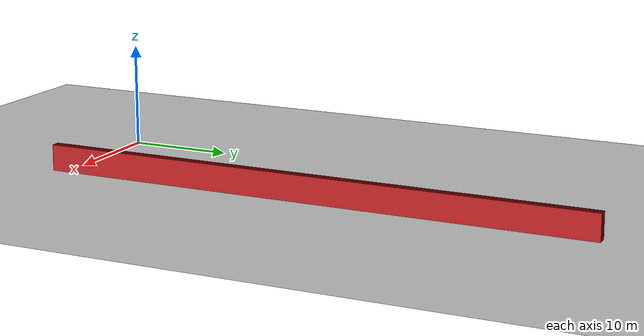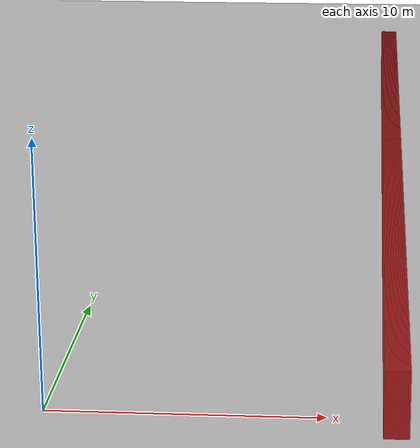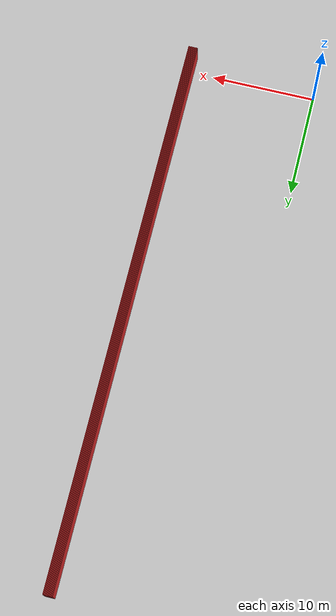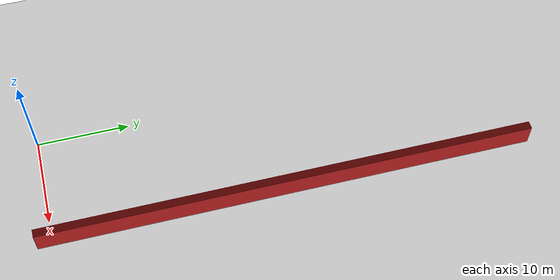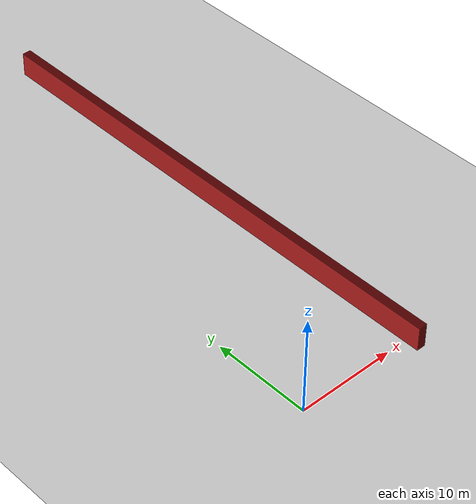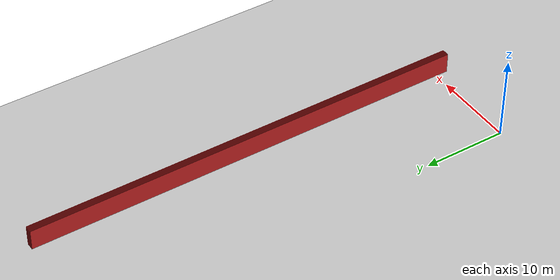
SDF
<sdf version="1.4">
 <world name="1_wall">
  <model name="ground_plane">
   <static>1</static>
   <link name="link">
    <collision name="collision">
     <geometry><plane><normal>0 0 1</normal><size>1000 1000</size></plane></geometry>
     <surface><friction><ode><mu>100</mu><mu2>50</mu2></ode></friction></surface>
    </collision>
    <visual name="visual">
     <cast_shadows>0</cast_shadows>
     <geometry><plane><normal>0 0 1</normal><size>10000 10000</size></plane></geometry>
     <material>
      <script><uri>file://media/materials/scripts/gazebo.material</uri><name>Gazebo/Grey</name></script>
     </material>
    </visual>
    <velocity_decay><linear>0</linear><angular>0</angular></velocity_decay>
   </link>
  </model>
  <model name="Wall_270">
   <static>1</static>
   <link name="Wall_270">
    <collision name="Wall_Collision_270">
     <geometry><box><size>53.65 0.05 2.5</size></box></geometry>
     <pose>0 0 1.25 0 -0 0</pose>
    </collision>
    <visual name="Wall_Visual_270">
     <pose>0 0 1.25 0 -0 0</pose>
     <geometry><box><size>53.65 0.05 2.5</size></box></geometry>
     <material>
      <script><uri>file://media/materials/scripts/gazebo.material</uri><name>Gazebo/Red</name></script>
     </material>
    </visual>
    <velocity_decay><linear>0</linear><angular>0</angular></velocity_decay>
    <pose>12.0 25.3 0 0 0 1.5707963267948966</pose>
   </link>
  </model>
  <model name="Wall_271">
   <static>1</static>
   <link name="Wall_271">
    <collision name="Wall_Collision_271">
     <geometry><box><size>53.65 0.05 2.5</size></box></geometry>
     <pose>0 0 1.25 0 -0 0</pose>
    </collision>
    <visual name="Wall_Visual_271">
     <pose>0 0 1.25 0 -0 0</pose>
     <geometry><box><size>53.65 0.05 2.5</size></box></geometry>
     <material>
      <script><uri>file://media/materials/scripts/gazebo.material</uri><name>Gazebo/Red</name></script>
     </material>
    </visual>
    <velocity_decay><linear>0</linear><angular>0</angular></velocity_decay>
    <pose>12.05 25.3 0 0 0 1.5707963267948966</pose>
   </link>
  </model>
  <model name="Wall_272">
   <static>1</static>
   <link name="Wall_272">
    <collision name="Wall_Collision_272">
     <geometry><box><size>53.65 0.05 2.5</size></box></geometry>
     <pose>0 0 1.25 0 -0 0</pose>
    </collision>
    <visual name="Wall_Visual_272">
     <pose>0 0 1.25 0 -0 0</pose>
     <geometry><box><size>53.65 0.05 2.5</size></box></geometry>
     <material>
      <script><uri>file://media/materials/scripts/gazebo.material</uri><name>Gazebo/Red</name></script>
     </material>
    </visual>
    <velocity_decay><linear>0</linear><angular>0</angular></velocity_decay>
    <pose>12.1 25.3 0 0 0 1.5707963267948966</pose>
   </link>
  </model>
  <model name="Wall_273">
   <static>1</static>
   <link name="Wall_273">
    <collision name="Wall_Collision_273">
     <geometry><box><size>53.65 0.05 2.5</size></box></geometry>
     <pose>0 0 1.25 0 -0 0</pose>
    </collision>
    <visual name="Wall_Visual_273">
     <pose>0 0 1.25 0 -0 0</pose>
     <geometry><box><size>53.65 0.05 2.5</size></box></geometry>
     <material>
      <script><uri>file://media/materials/scripts/gazebo.material</uri><name>Gazebo/Red</name></script>
     </material>
    </visual>
    <velocity_decay><linear>0</linear><angular>0</angular></velocity_decay>
    <pose>12.15 25.3 0 0 0 1.5707963267948966</pose>
   </link>
  </model>
  <model name="Wall_274">
   <static>1</static>
   <link name="Wall_274">
    <collision name="Wall_Collision_274">
     <geometry><box><size>53.65 0.05 2.5</size></box></geometry>
     <pose>0 0 1.25 0 -0 0</pose>
    </collision>
    <visual name="Wall_Visual_274">
     <pose>0 0 1.25 0 -0 0</pose>
     <geometry><box><size>53.65 0.05 2.5</size></box></geometry>
     <material>
      <script><uri>file://media/materials/scripts/gazebo.material</uri><name>Gazebo/Red</name></script>
     </material>
    </visual>
    <velocity_decay><linear>0</linear><angular>0</angular></velocity_decay>
    <pose>12.2 25.3 0 0 0 1.5707963267948966</pose>
   </link>
  </model>
  <model name="Wall_275">
   <static>1</static>
   <link name="Wall_275">
    <collision name="Wall_Collision_275">
     <geometry><box><size>53.65 0.05 2.5</size></box></geometry>
     <pose>0 0 1.25 0 -0 0</pose>
    </collision>
    <visual name="Wall_Visual_275">
     <pose>0 0 1.25 0 -0 0</pose>
     <geometry><box><size>53.65 0.05 2.5</size></box></geometry>
     <material>
      <script><uri>file://media/materials/scripts/gazebo.material</uri><name>Gazebo/Red</name></script>
     </material>
    </visual>
    <velocity_decay><linear>0</linear><angular>0</angular></velocity_decay>
    <pose>12.25 25.3 0 0 0 1.5707963267948966</pose>
   </link>
  </model>
  <model name="Wall_276">
   <static>1</static>
   <link name="Wall_276">
    <collision name="Wall_Collision_276">
     <geometry><box><size>53.65 0.05 2.5</size></box></geometry>
     <pose>0 0 1.25 0 -0 0</pose>
    </collision>
    <visual name="Wall_Visual_276">
     <pose>0 0 1.25 0 -0 0</pose>
     <geometry><box><size>53.65 0.05 2.5</size></box></geometry>
     <material>
      <script><uri>file://media/materials/scripts/gazebo.material</uri><name>Gazebo/Red</name></script>
     </material>
    </visual>
    <velocity_decay><linear>0</linear><angular>0</angular></velocity_decay>
    <pose>12.3 25.3 0 0 0 1.5707963267948966</pose>
   </link>
  </model>
  <model name="Wall_277">
   <static>1</static>
   <link name="Wall_277">
    <collision name="Wall_Collision_277">
     <geometry><box><size>53.65 0.05 2.5</size></box></geometry>
     <pose>0 0 1.25 0 -0 0</pose>
    </collision>
    <visual name="Wall_Visual_277">
     <pose>0 0 1.25 0 -0 0</pose>
     <geometry><box><size>53.65 0.05 2.5</size></box></geometry>
     <material>
      <script><uri>file://media/materials/scripts/gazebo.material</uri><name>Gazebo/Red</name></script>
     </material>
    </visual>
    <velocity_decay><linear>0</linear><angular>0</angular></velocity_decay>
    <pose>12.35 25.3 0 0 0 1.5707963267948966</pose>
   </link>
  </model>
  <model name="Wall_278">
   <static>1</static>
   <link name="Wall_278">
    <collision name="Wall_Collision_278">
     <geometry><box><size>53.65 0.05 2.5</size></box></geometry>
     <pose>0 0 1.25 0 -0 0</pose>
    </collision>
    <visual name="Wall_Visual_278">
     <pose>0 0 1.25 0 -0 0</pose>
     <geometry><box><size>53.65 0.05 2.5</size></box></geometry>
     <material>
      <script><uri>file://media/materials/scripts/gazebo.material</uri><name>Gazebo/Red</name></script>
     </material>
    </visual>
    <velocity_decay><linear>0</linear><angular>0</angular></velocity_decay>
    <pose>12.4 25.3 0 0 0 1.5707963267948966</pose>
   </link>
  </model>
  <model name="Wall_279">
   <static>1</static>
   <link name="Wall_279">
    <collision name="Wall_Collision_279">
     <geometry><box><size>53.65 0.05 2.5</size></box></geometry>
     <pose>0 0 1.25 0 -0 0</pose>
    </collision>
    <visual name="Wall_Visual_279">
     <pose>0 0 1.25 0 -0 0</pose>
     <geometry><box><size>53.65 0.05 2.5</size></box></geometry>
     <material>
      <script><uri>file://media/materials/scripts/gazebo.material</uri><name>Gazebo/Red</name></script>
     </material>
    </visual>
    <velocity_decay><linear>0</linear><angular>0</angular></velocity_decay>
    <pose>12.45 25.3 0 0 0 1.5707963267948966</pose>
   </link>
  </model>
  <model name="Wall_280">
   <static>1</static>
   <link name="Wall_280">
    <collision name="Wall_Collision_280">
     <geometry><box><size>53.65 0.05 2.5</size></box></geometry>
     <pose>0 0 1.25 0 -0 0</pose>
    </collision>
    <visual name="Wall_Visual_280">
     <pose>0 0 1.25 0 -0 0</pose>
     <geometry><box><size>53.65 0.05 2.5</size></box></geometry>
     <material>
      <script><uri>file://media/materials/scripts/gazebo.material</uri><name>Gazebo/Red</name></script>
     </material>
    </visual>
    <velocity_decay><linear>0</linear><angular>0</angular></velocity_decay>
    <pose>12.5 25.3 0 0 0 1.5707963267948966</pose>
   </link>
  </model>
  <model name="Wall_281">
   <static>1</static>
   <link name="Wall_281">
    <collision name="Wall_Collision_281">
     <geometry><box><size>53.65 0.05 2.5</size></box></geometry>
     <pose>0 0 1.25 0 -0 0</pose>
    </collision>
    <visual name="Wall_Visual_281">
     <pose>0 0 1.25 0 -0 0</pose>
     <geometry><box><size>53.65 0.05 2.5</size></box></geometry>
     <material>
      <script><uri>file://media/materials/scripts/gazebo.material</uri><name>Gazebo/Red</name></script>
     </material>
    </visual>
    <velocity_decay><linear>0</linear><angular>0</angular></velocity_decay>
    <pose>12.55 25.3 0 0 0 1.5707963267948966</pose>
   </link>
  </model>
  <model name="Wall_282">
   <static>1</static>
   <link name="Wall_282">
    <collision name="Wall_Collision_282">
     <geometry><box><size>53.65 0.05 2.5</size></box></geometry>
     <pose>0 0 1.25 0 -0 0</pose>
    </collision>
    <visual name="Wall_Visual_282">
     <pose>0 0 1.25 0 -0 0</pose>
     <geometry><box><size>53.65 0.05 2.5</size></box></geometry>
     <material>
      <script><uri>file://media/materials/scripts/gazebo.material</uri><name>Gazebo/Red</name></script>
     </material>
    </visual>
    <velocity_decay><linear>0</linear><angular>0</angular></velocity_decay>
    <pose>12.6 25.3 0 0 0 1.5707963267948966</pose>
   </link>
  </model>
  <model name="Wall_283">
   <static>1</static>
   <link name="Wall_283">
    <collision name="Wall_Collision_283">
     <geometry><box><size>53.65 0.05 2.5</size></box></geometry>
     <pose>0 0 1.25 0 -0 0</pose>
    </collision>
    <visual name="Wall_Visual_283">
     <pose>0 0 1.25 0 -0 0</pose>
     <geometry><box><size>53.65 0.05 2.5</size></box></geometry>
     <material>
      <script><uri>file://media/materials/scripts/gazebo.material</uri><name>Gazebo/Red</name></script>
     </material>
    </visual>
    <velocity_decay><linear>0</linear><angular>0</angular></velocity_decay>
    <pose>12.65 25.3 0 0 0 1.5707963267948966</pose>
   </link>
  </model>
  <model name="Wall_284">
   <static>1</static>
   <link name="Wall_284">
    <collision name="Wall_Collision_284">
     <geometry><box><size>53.65 0.05 2.5</size></box></geometry>
     <pose>0 0 1.25 0 -0 0</pose>
    </collision>
    <visual name="Wall_Visual_284">
     <pose>0 0 1.25 0 -0 0</pose>
     <geometry><box><size>53.65 0.05 2.5</size></box></geometry>
     <material>
      <script><uri>file://media/materials/scripts/gazebo.material</uri><name>Gazebo/Red</name></script>
     </material>
    </visual>
    <velocity_decay><linear>0</linear><angular>0</angular></velocity_decay>
    <pose>12.7 25.3 0 0 0 1.5707963267948966</pose>
   </link>
  </model>
  <model name="Wall_285">
   <static>1</static>
   <link name="Wall_285">
    <collision name="Wall_Collision_285">
     <geometry><box><size>53.65 0.05 2.5</size></box></geometry>
     <pose>0 0 1.25 0 -0 0</pose>
    </collision>
    <visual name="Wall_Visual_285">
     <pose>0 0 1.25 0 -0 0</pose>
     <geometry><box><size>53.65 0.05 2.5</size></box></geometry>
     <material>
      <script><uri>file://media/materials/scripts/gazebo.material</uri><name>Gazebo/Red</name></script>
     </material>
    </visual>
    <velocity_decay><linear>0</linear><angular>0</angular></velocity_decay>
    <pose>12.75 25.3 0 0 0 1.5707963267948966</pose>
   </link>
  </model>
  <model name="Wall_286">
   <static>1</static>
   <link name="Wall_286">
    <collision name="Wall_Collision_286">
     <geometry><box><size>53.65 0.05 2.5</size></box></geometry>
     <pose>0 0 1.25 0 -0 0</pose>
    </collision>
    <visual name="Wall_Visual_286">
     <pose>0 0 1.25 0 -0 0</pose>
     <geometry><box><size>53.65 0.05 2.5</size></box></geometry>
     <material>
      <script><uri>file://media/materials/scripts/gazebo.material</uri><name>Gazebo/Red</name></script>
     </material>
    </visual>
    <velocity_decay><linear>0</linear><angular>0</angular></velocity_decay>
    <pose>12.8 25.3 0 0 0 1.5707963267948966</pose>
   </link>
  </model>
  <model name="Wall_287">
   <static>1</static>
   <link name="Wall_287">
    <collision name="Wall_Collision_287">
     <geometry><box><size>53.65 0.05 2.5</size></box></geometry>
     <pose>0 0 1.25 0 -0 0</pose>
    </collision>
    <visual name="Wall_Visual_287">
     <pose>0 0 1.25 0 -0 0</pose>
     <geometry><box><size>53.65 0.05 2.5</size></box></geometry>
     <material>
      <script><uri>file://media/materials/scripts/gazebo.material</uri><name>Gazebo/Red</name></script>
     </material>
    </visual>
    <velocity_decay><linear>0</linear><angular>0</angular></velocity_decay>
    <pose>12.85 25.3 0 0 0 1.5707963267948966</pose>
   </link>
  </model>
 </world>
</sdf>
